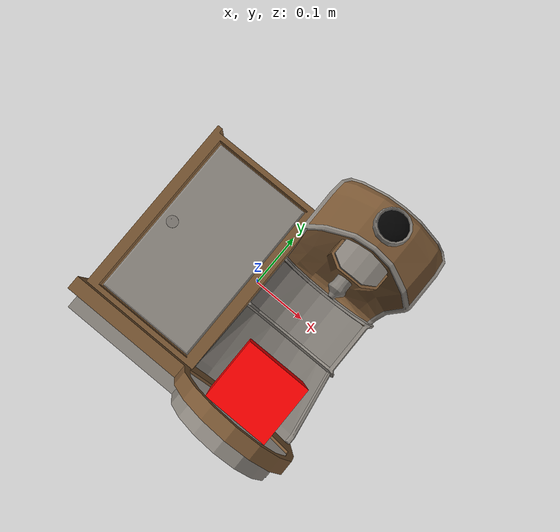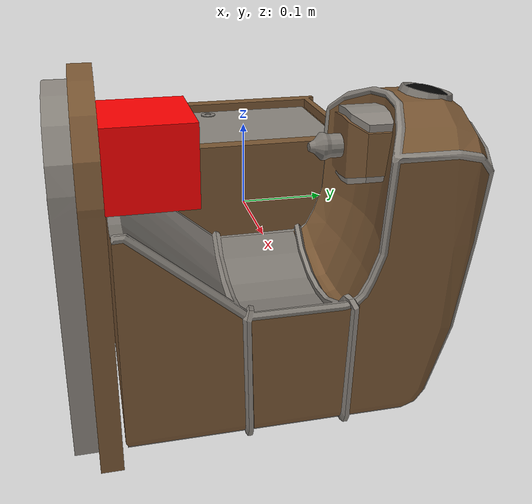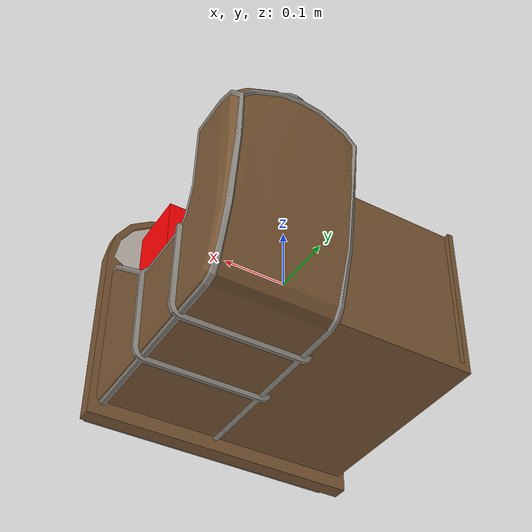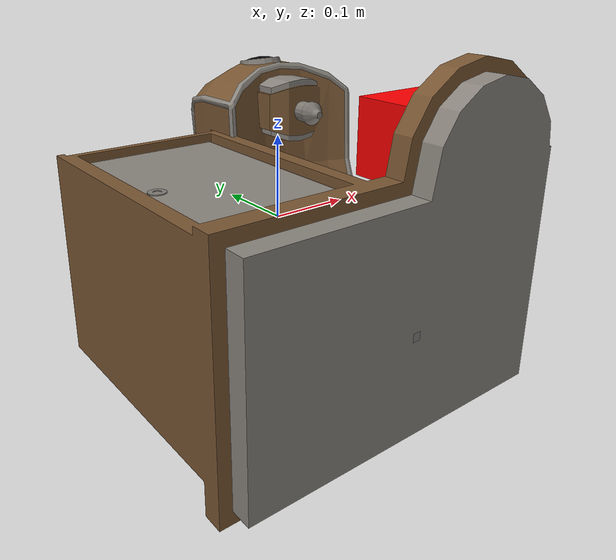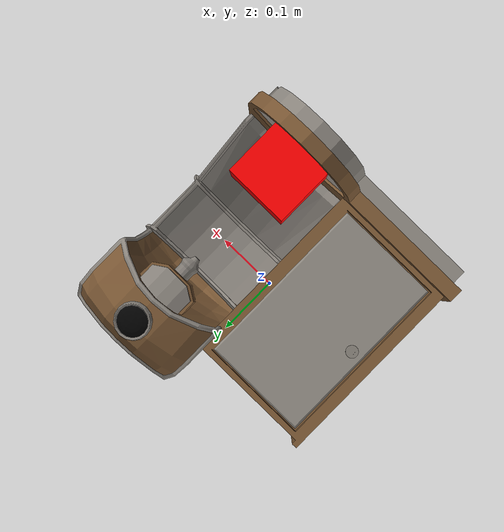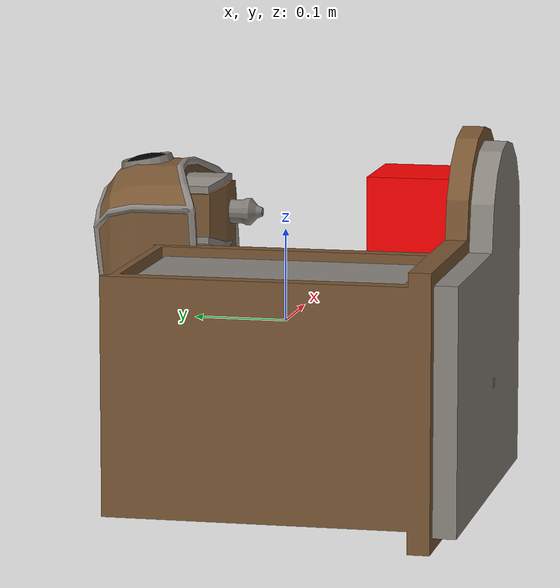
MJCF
<mujoco model="coffee_machine_29">
  <compiler autolimits="true" boundmass="0.01" angle="radian"/>
  <default>
    <default class="/">
      <default class="__VISUAL_MJT__">
        <geom contype="0" conaffinity="0" group="0"/>
      </default>
      <default class="__STRUCTURAL_MJT__">
        <geom contype="8" conaffinity="15" group="4" friction="0.90000000000000002 0.90000000000000002 0.001" solref="0.025000000000000001 1" solimp="0.998 0.998 0.001"/>
      </default>
      <default class="__DYNAMIC_MJT__">
        <geom contype="1" conaffinity="15" group="4" friction="0.90000000000000002 0.90000000000000002 0.001" solref="0.025000000000000001 1" solimp="0.998 0.998 0.001"/>
      </default>
    </default>
  </default>
  <asset>
    <material name="material_coffee_machine_backup_mat" class="/" specular="0.5" shininess="0.5" rgba="0.5 0.5 0.5 1"/>
    <material name="material_Coffee_Machine_Readout_Mat_Off" class="/" specular="0.5" shininess="0.5" rgba="0 0 0 1"/>
    <texture name="Coffee_Machine_Decal_Mat" type="2d" file="Coffee_Machine_Decal_AlbedoTransparency.png"/>
    <material name="material_Coffee_Machine_Decal_Mat" class="/" texture="Coffee_Machine_Decal_Mat" specular="0.5" shininess="0.5" rgba="1 1 1 1"/>
    <texture name="Coffee_Machine_Metal_Mat" type="2d" file="MetalBumpy_AlbedoTransparency.png"/>
    <material name="material_Coffee_Machine_Metal_Mat" class="/" texture="Coffee_Machine_Metal_Mat" specular="0.5" shininess="0.5" rgba="0.66176469999999998 0.66176469999999998 0.66176469999999998 1"/>
    <texture name="Coffee_Machine_Secondary4_Color_Mat" type="2d" file="BrushedIron_AlbedoTransparency.png"/>
    <material name="material_Coffee_Machine_Secondary4_Color_Mat" class="/" texture="Coffee_Machine_Secondary4_Color_Mat" specular="0.5" shininess="0.5" rgba="0.72058820000000001 0.72058820000000001 0.72058820000000001 1"/>
    <texture name="Coffee_Machine_Primary2_Color_Mat" type="2d" file="BumpyPlastic_Albedo.png"/>
    <material name="material_Coffee_Machine_Primary2_Color_Mat" class="/" texture="Coffee_Machine_Primary2_Color_Mat" specular="0.5" shininess="0.5" rgba="0.6323529 0.46849269999999998 0.29292820000000003 1"/>
    <mesh name="coffee_machine_29_coffee_machine_29_0" class="/" file="coffee_machine_29_coffee_machine_29/coffee_machine_29_coffee_machine_29_0.obj" scale="1 1 1"/>
    <mesh name="coffee_machine_29_coffee_machine_29_1" class="/" file="coffee_machine_29_coffee_machine_29/coffee_machine_29_coffee_machine_29_1.obj" scale="1 1 1"/>
    <mesh name="coffee_machine_29_coffee_machine_29_2" class="/" file="coffee_machine_29_coffee_machine_29/coffee_machine_29_coffee_machine_29_2.obj" scale="1 1 1"/>
    <mesh name="coffee_machine_29_coffee_machine_29_3" class="/" file="coffee_machine_29_coffee_machine_29/coffee_machine_29_coffee_machine_29_3.obj" scale="1 1 1"/>
    <mesh name="coffee_machine_29_coffee_machine_29_4" class="/" file="coffee_machine_29_coffee_machine_29/coffee_machine_29_coffee_machine_29_4.obj" scale="1 1 1"/>
    <mesh name="coffee_machine_29_coffee_machine_29_5" class="/" file="coffee_machine_29_coffee_machine_29/coffee_machine_29_coffee_machine_29_5.obj" scale="1 1 1"/>
  </asset>
  <worldbody>
    <body name="coffee_machine_29">
      <joint name="coffee_machine_29_free" class="/" type="free" pos="0 0 0" axis="0 0 1" stiffness="0" range="0 0" armature="0" damping="0.10000000000000001" frictionloss="0"/>
      <body name="coffee_machine_29_coffee_machine_29" pos="-0.0012099999999999999 -0.23872999992847443 -0.059380000000000002" quat="1 0 0 0">
        <geom name="coffee_machine_29_coffee_machine_29_0" class="__VISUAL_MJT__" type="mesh" material="material_coffee_machine_backup_mat" shellinertia="true" mesh="coffee_machine_29_coffee_machine_29_0"/>
        <geom name="coffee_machine_29_coffee_machine_29_1" class="__VISUAL_MJT__" type="mesh" material="material_Coffee_Machine_Readout_Mat_Off" shellinertia="false" mesh="coffee_machine_29_coffee_machine_29_1"/>
        <geom name="coffee_machine_29_coffee_machine_29_2" class="__VISUAL_MJT__" type="mesh" material="material_Coffee_Machine_Decal_Mat" shellinertia="false" mesh="coffee_machine_29_coffee_machine_29_2"/>
        <geom name="coffee_machine_29_coffee_machine_29_3" class="__VISUAL_MJT__" type="mesh" material="material_Coffee_Machine_Metal_Mat" shellinertia="false" mesh="coffee_machine_29_coffee_machine_29_3"/>
        <geom name="coffee_machine_29_coffee_machine_29_4" class="__VISUAL_MJT__" type="mesh" material="material_Coffee_Machine_Secondary4_Color_Mat" shellinertia="false" mesh="coffee_machine_29_coffee_machine_29_4"/>
        <geom name="coffee_machine_29_coffee_machine_29_5" class="__VISUAL_MJT__" type="mesh" material="material_Coffee_Machine_Primary2_Color_Mat" shellinertia="false" mesh="coffee_machine_29_coffee_machine_29_5"/>
        <site name="coffee_machine_29_Receptacle_0" class="/" type="box" rgba="1 0 0 1" size="0.05413408949971199 0.053846582770347595 0.044631212949752808" pos="0.10660000145435333 0.10594658553600311 0.1664210706949234" quat="1 0 0 0"/>
        <geom name="coffee_machine_29_PrimitiveCollider_0" class="__DYNAMIC_MJT__" type="box" size="0.11600898206233978 0.19032560288906097 0.14944553375244141" rgba="0 1 0 1" pos="-0.10346435010433197 0.19032560288906097 0.0040574073791503906" quat="1 0 0 0"/>
        <geom name="coffee_machine_29_PrimitiveCollider_1" class="__DYNAMIC_MJT__" type="box" size="0.10785198211669922 0.20749808847904205 0.12755060195922852" rgba="0 1 0 1" pos="0.10732793807983398 0.20749808847904205 -0.0178375244140625" quat="1 0 0 0"/>
        <geom name="coffee_machine_29_PrimitiveCollider_2" class="__DYNAMIC_MJT__" type="box" size="0.10785198211669922 0.069688796997070312 0.17005252838134766" rgba="0 1 0 1" pos="0.10732793807983398 0.38136956095695496 0.054716110229492188" quat="1 0 0 0"/>
        <geom name="coffee_machine_29_PrimitiveCollider_3" class="__DYNAMIC_MJT__" type="box" size="0.10832728445529938 0.026328310370445251 0.20476865768432617" rgba="0 1 0 1" pos="0.10873565077781677 0.026328310370445251 0.059380531311035156" quat="1 0 0 0"/>
      </body>
    </body>
  </worldbody>
</mujoco>
